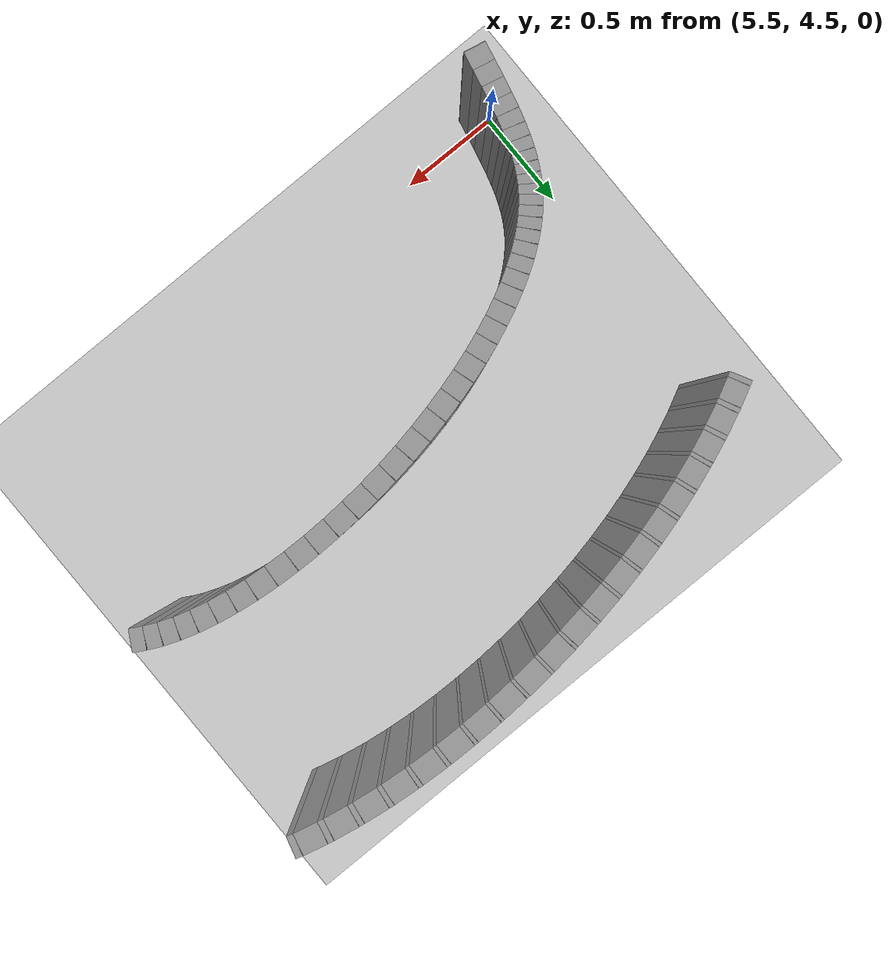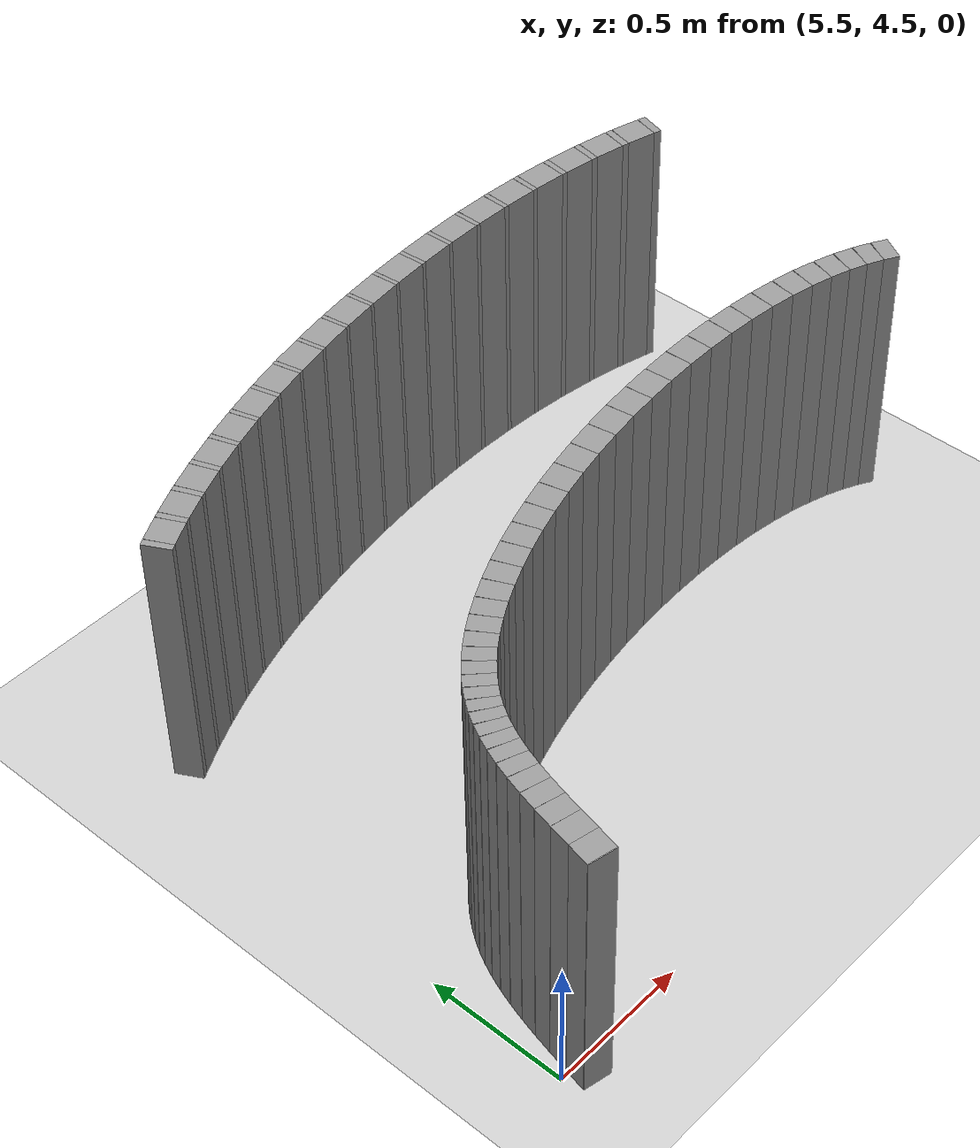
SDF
<sdf version="1.6">
 <world name="default">
  <include><uri>model://ground_plane</uri></include>
  <include><uri>model://sun</uri></include>
  <model name="wall_212_outward">
   <static>true</static>
   <link name="link">
    <collision name="collision">
     <geometry><box><size>0.05995046312315907 0.1 1.0</size></box></geometry>
    </collision>
    <visual name="visual">
     <geometry><box><size>0.05995046312315907 0.1 1.0</size></box></geometry>
     <material>
      <script><uri>file://media/materials/scripts/gazebo.material</uri><name>Gazebo/Gray</name></script>
     </material>
    </visual>
   </link>
   <pose>8.1506237798967 5.406469360327763 0.5 0 0 2.625404325792765</pose>
  </model>
  <model name="wall_213_outward">
   <static>true</static>
   <link name="link">
    <collision name="collision">
     <geometry><box><size>0.06509933092890204 0.1 1.0</size></box></geometry>
    </collision>
    <visual name="visual">
     <geometry><box><size>0.06509933092890204 0.1 1.0</size></box></geometry>
     <material>
      <script><uri>file://media/materials/scripts/gazebo.material</uri><name>Gazebo/Gray</name></script>
     </material>
    </visual>
   </link>
   <pose>8.095083386614988 5.435082907767775 0.5 0 0 2.70313628802765</pose>
  </model>
  <model name="wall_214_outward">
   <static>true</static>
   <link name="link">
    <collision name="collision">
     <geometry><box><size>0.07090601450926234 0.1 1.0</size></box></geometry>
    </collision>
    <visual name="visual">
     <geometry><box><size>0.07090601450926234 0.1 1.0</size></box></geometry>
     <material>
      <script><uri>file://media/materials/scripts/gazebo.material</uri><name>Gazebo/Gray</name></script>
     </material>
    </visual>
   </link>
   <pose>8.032509874602791 5.461594985831955 0.5 0 0 2.775431662112693</pose>
  </model>
  <model name="wall_215_outward">
   <static>true</static>
   <link name="link">
    <collision name="collision">
     <geometry><box><size>0.07699504733626207 0.1 1.0</size></box></geometry>
    </collision>
    <visual name="visual">
     <geometry><box><size>0.07699504733626207 0.1 1.0</size></box></geometry>
     <material>
      <script><uri>file://media/materials/scripts/gazebo.material</uri><name>Gazebo/Gray</name></script>
     </material>
    </visual>
   </link>
   <pose>7.962626741277601 5.485657832459349 0.5 0 0 2.841791571436246</pose>
  </model>
  <model name="wall_216_outward">
   <static>true</static>
   <link name="link">
    <collision name="collision">
     <geometry><box><size>0.08301848457207754 0.1 1.0</size></box></geometry>
    </collision>
    <visual name="visual">
     <geometry><box><size>0.08301848457207754 0.1 1.0</size></box></geometry>
     <material>
      <script><uri>file://media/materials/scripts/gazebo.material</uri><name>Gazebo/Gray</name></script>
     </material>
    </visual>
   </link>
   <pose>7.885521438888849 5.506871880847077 0.5 0 0 2.902145391687688</pose>
  </model>
  <model name="wall_217_outward">
   <static>true</static>
   <link name="link">
    <collision name="collision">
     <geometry><box><size>0.08868573841281405 0.1 1.0</size></box></geometry>
    </collision>
    <visual name="visual">
     <geometry><box><size>0.08868573841281405 0.1 1.0</size></box></geometry>
     <material>
      <script><uri>file://media/materials/scripts/gazebo.material</uri><name>Gazebo/Gray</name></script>
     </material>
    </visual>
   </link>
   <pose>7.8016088474082945 5.524865537663162 0.5 0 0 2.956767672621904</pose>
  </model>
  <model name="wall_218_outward">
   <static>true</static>
   <link name="link">
    <collision name="collision">
     <geometry><box><size>0.09377079176446705 0.1 1.0</size></box></geometry>
    </collision>
    <visual name="visual">
     <geometry><box><size>0.09377079176446705 0.1 1.0</size></box></geometry>
     <material>
      <script><uri>file://media/materials/scripts/gazebo.material</uri><name>Gazebo/Gray</name></script>
     </material>
    </visual>
   </link>
   <pose>7.711565120805339 5.539344903621009 0.5 0 0 3.006163068854115</pose>
  </model>
  <model name="wall_219_outward">
   <static>true</static>
   <link name="link">
    <collision name="collision">
     <geometry><box><size>0.0981175118577259 0.1 1.0</size></box></geometry>
    </collision>
    <visual name="visual">
     <geometry><box><size>0.0981175118577259 0.1 1.0</size></box></geometry>
     <material>
      <script><uri>file://media/materials/scripts/gazebo.material</uri><name>Gazebo/Gray</name></script>
     </material>
    </visual>
   </link>
   <pose>7.616251529898774 5.550114297664309 0.5 0 0 3.050983003352547</pose>
  </model>
  <model name="wall_220_outward">
   <static>true</static>
   <link name="link">
    <collision name="collision">
     <geometry><box><size>0.10162600915687924 0.1 1.0</size></box></geometry>
    </collision>
    <visual name="visual">
     <geometry><box><size>0.10162600915687924 0.1 1.0</size></box></geometry>
     <material>
      <script><uri>file://media/materials/scripts/gazebo.material</uri><name>Gazebo/Gray</name></script>
     </material>
    </visual>
   </link>
   <pose>7.516643686479449 5.55707622343524 0.5 0 0 3.091923345869126</pose>
  </model>
  <model name="wall_221_outward">
   <static>true</static>
   <link name="link">
    <collision name="collision">
     <geometry><box><size>0.10425214143422878 0.1 1.0</size></box></geometry>
    </collision>
    <visual name="visual">
     <geometry><box><size>0.10425214143422878 0.1 1.0</size></box></geometry>
     <material>
      <script><uri>file://media/materials/scripts/gazebo.material</uri><name>Gazebo/Gray</name></script>
     </material>
    </visual>
   </link>
   <pose>7.413770955394101 5.560218266210343 0.5 0 0 3.1297128364050724</pose>
  </model>
  <model name="wall_222_outward">
   <static>true</static>
   <link name="link">
    <collision name="collision">
     <geometry><box><size>0.10599500957717113 0.1 1.0</size></box></geometry>
    </collision>
    <visual name="visual">
     <geometry><box><size>0.10599500957717113 0.1 1.0</size></box></geometry>
     <material>
      <script><uri>file://media/materials/scripts/gazebo.material</uri><name>Gazebo/Gray</name></script>
     </material>
    </visual>
   </link>
   <pose>7.308665594637407 5.559596296106831 0.5 0 0 -3.1181704712085003</pose>
  </model>
  <model name="wall_223_outward">
   <static>true</static>
   <link name="link">
    <collision name="collision">
     <geometry><box><size>0.10688000333019294 0.1 1.0</size></box></geometry>
    </collision>
    <visual name="visual">
     <geometry><box><size>0.10688000333019294 0.1 1.0</size></box></geometry>
     <material>
      <script><uri>file://media/materials/scripts/gazebo.material</uri><name>Gazebo/Gray</name></script>
     </material>
    </visual>
   </link>
   <pose>7.202329036396534 5.555317294556017 0.5 0 0 -3.0847169772143976</pose>
  </model>
  <model name="wall_224_outward">
   <static>true</static>
   <link name="link">
    <collision name="collision">
     <geometry><box><size>0.10696598660294745 0.1 1.0</size></box></geometry>
    </collision>
    <visual name="visual">
     <geometry><box><size>0.10696598660294745 0.1 1.0</size></box></geometry>
     <material>
      <script><uri>file://media/materials/scripts/gazebo.material</uri><name>Gazebo/Gray</name></script>
     </material>
    </visual>
   </link>
   <pose>7.0957043651149725 5.54752318849598 0.5 0 0 -3.0525437843858363</pose>
  </model>
  <model name="wall_225_outward">
   <static>true</static>
   <link name="link">
    <collision name="collision">
     <geometry><box><size>0.1063183626840919 0.1 1.0</size></box></geometry>
    </collision>
    <visual name="visual">
     <geometry><box><size>0.1063183626840919 0.1 1.0</size></box></geometry>
     <material>
      <script><uri>file://media/materials/scripts/gazebo.material</uri><name>Gazebo/Gray</name></script>
     </material>
    </visual>
   </link>
   <pose>6.989659174433154 5.536380023327034 0.5 0 0 -3.021155822221346</pose>
  </model>
  <model name="wall_226_outward">
   <static>true</static>
   <link name="link">
    <collision name="collision">
     <geometry><box><size>0.10501615840802588 0.1 1.0</size></box></geometry>
    </collision>
    <visual name="visual">
     <geometry><box><size>0.10501615840802588 0.1 1.0</size></box></geometry>
     <material>
      <script><uri>file://media/materials/scripts/gazebo.material</uri><name>Gazebo/Gray</name></script>
     </material>
    </visual>
   </link>
   <pose>6.884978440751743 5.5220684749826585 0.5 0 0 -2.9900904714254004</pose>
  </model>
  <model name="wall_227_outward">
   <static>true</static>
   <link name="link">
    <collision name="collision">
     <geometry><box><size>0.10313655621044901 0.1 1.0</size></box></geometry>
    </collision>
    <visual name="visual">
     <geometry><box><size>0.10313655621044901 0.1 1.0</size></box></geometry>
     <material>
      <script><uri>file://media/materials/scripts/gazebo.material</uri><name>Gazebo/Gray</name></script>
     </material>
    </visual>
   </link>
   <pose>6.782361101849957 5.504778382736661 0.5 0 0 -2.958967530170526</pose>
  </model>
  <model name="wall_228_outward">
   <static>true</static>
   <link name="link">
    <collision name="collision">
     <geometry><box><size>0.10075711178670715 0.1 1.0</size></box></geometry>
    </collision>
    <visual name="visual">
     <geometry><box><size>0.10075711178670715 0.1 1.0</size></box></geometry>
     <material>
      <script><uri>file://media/materials/scripts/gazebo.material</uri><name>Gazebo/Gray</name></script>
     </material>
    </visual>
   </link>
   <pose>6.682422951948803 5.4847051106708085 0.5 0 0 -2.92741064654284</pose>
  </model>
  <model name="wall_229_outward">
   <static>true</static>
   <link name="link">
    <collision name="collision">
     <geometry><box><size>0.09794020908362813 0.1 1.0</size></box></geometry>
    </collision>
    <visual name="visual">
     <geometry><box><size>0.09794020908362813 0.1 1.0</size></box></geometry>
     <material>
      <script><uri>file://media/materials/scripts/gazebo.material</uri><name>Gazebo/Gray</name></script>
     </material>
    </visual>
   </link>
   <pose>6.585705332641698 5.462049287182218 0.5 0 0 -2.895120123076851</pose>
  </model>
  <model name="wall_230_outward">
   <static>true</static>
   <link name="link">
    <collision name="collision"><geometry><box><size>0.094729739419281 0.1 1.0</size></box></geometry></collision>
    <visual name="visual">
     <geometry><box><size>0.094729739419281 0.1 1.0</size></box></geometry>
     <material>
      <script><uri>file://media/materials/scripts/gazebo.material</uri><name>Gazebo/Gray</name></script>
     </material>
    </visual>
   </link>
   <pose>6.492692766437545 5.437019148546813 0.5 0 0 -2.8617543999374733</pose>
  </model>
  <model name="wall_231_outward">
   <static>true</static>
   <link name="link">
    <collision name="collision">
     <geometry><box><size>0.09116728067584746 0.1 1.0</size></box></geometry>
    </collision>
    <visual name="visual">
     <geometry><box><size>0.09116728067584746 0.1 1.0</size></box></geometry>
     <material>
      <script><uri>file://media/materials/scripts/gazebo.material</uri><name>Gazebo/Gray</name></script>
     </material>
    </visual>
   </link>
   <pose>6.403824024808419 5.409831594691321 0.5 0 0 -2.8269893704129645</pose>
  </model>
  <model name="wall_232_outward">
   <static>true</static>
   <link name="link">
    <collision name="collision">
     <geometry><box><size>0.08727541460235813 0.1 1.0</size></box></geometry>
    </collision>
    <visual name="visual">
     <geometry><box><size>0.08727541460235813 0.1 1.0</size></box></geometry>
     <material>
      <script><uri>file://media/materials/scripts/gazebo.material</uri><name>Gazebo/Gray</name></script>
     </material>
    </visual>
   </link>
   <pose>6.319502337682961 5.380717162694282 0.5 0 0 -2.7904753713255004</pose>
  </model>
  <model name="wall_233_outward">
   <static>true</static>
   <link name="link">
    <collision name="collision">
     <geometry><box><size>0.08307569083572564 0.1 1.0</size></box></geometry>
    </collision>
    <visual name="visual">
     <geometry><box><size>0.08307569083572564 0.1 1.0</size></box></geometry>
     <material>
      <script><uri>file://media/materials/scripts/gazebo.material</uri><name>Gazebo/Gray</name></script>
     </material>
    </visual>
   </link>
   <pose>6.240104617225761 5.349924805192407 0.5 0 0 -2.7518246813445324</pose>
  </model>
  <model name="wall_234_outward">
   <static>true</static>
   <link name="link">
    <collision name="collision">
     <geometry><box><size>0.07858195476373597 0.1 1.0</size></box></geometry>
    </collision>
    <visual name="visual">
     <geometry><box><size>0.07858195476373597 0.1 1.0</size></box></geometry>
     <material>
      <script><uri>file://media/materials/scripts/gazebo.material</uri><name>Gazebo/Gray</name></script>
     </material>
    </visual>
   </link>
   <pose>6.165983883697352 5.317727817645947 0.5 0 0 -2.7106283042936674</pose>
  </model>
  <model name="wall_235_outward">
   <static>true</static>
   <link name="link">
    <collision name="collision">
     <geometry><box><size>0.07382531686332017 0.1 1.0</size></box></geometry>
    </collision>
    <visual name="visual">
     <geometry><box><size>0.07382531686332017 0.1 1.0</size></box></geometry>
     <material>
      <script><uri>file://media/materials/scripts/gazebo.material</uri><name>Gazebo/Gray</name></script>
     </material>
    </visual>
   </link>
   <pose>6.097462404003185 5.284426674954325 0.5 0 0 -2.6664138173351883</pose>
  </model>
  <model name="wall_236_outward">
   <static>true</static>
   <link name="link">
    <collision name="collision">
     <geometry><box><size>0.06887111057482227 0.1 1.0</size></box></geometry>
    </collision>
    <visual name="visual">
     <geometry><box><size>0.06887111057482227 0.1 1.0</size></box></geometry>
     <material>
      <script><uri>file://media/materials/scripts/gazebo.material</uri><name>Gazebo/Gray</name></script>
     </material>
    </visual>
   </link>
   <pose>6.034804521221858 5.250343427154345 0.5 0 0 -2.618730691392386</pose>
  </model>
  <model name="wall_237_outward">
   <static>true</static>
   <link name="link">
    <collision name="collision">
     <geometry><box><size>0.06381877566655578 0.1 1.0</size></box></geometry>
    </collision>
    <visual name="visual">
     <geometry><box><size>0.06381877566655578 0.1 1.0</size></box></geometry>
     <material>
      <script><uri>file://media/materials/scripts/gazebo.material</uri><name>Gazebo/Gray</name></script>
     </material>
    </visual>
   </link>
   <pose>5.978181418325321 5.2158100136790235 0.5 0 0 -2.567183375779532</pose>
  </model>
  <model name="wall_238_outward">
   <static>true</static>
   <link name="link">
    <collision name="collision">
     <geometry><box><size>0.05882028474571985 0.1 1.0</size></box></geometry>
    </collision>
    <visual name="visual">
     <geometry><box><size>0.05882028474571985 0.1 1.0</size></box></geometry>
     <material>
      <script><uri>file://media/materials/scripts/gazebo.material</uri><name>Gazebo/Gray</name></script>
     </material>
    </visual>
   </link>
   <pose>5.927630631859757 5.181143132241562 0.5 0 0 -2.5114901246663437</pose>
  </model>
  <model name="wall_239_outward">
   <static>true</static>
   <link name="link">
    <collision name="collision">
     <geometry><box><size>0.05408720525059506 0.1 1.0</size></box></geometry>
    </collision>
    <visual name="visual">
     <geometry><box><size>0.05408720525059506 0.1 1.0</size></box></geometry>
     <material>
      <script><uri>file://media/materials/scripts/gazebo.material</uri><name>Gazebo/Gray</name></script>
     </material>
    </visual>
   </link>
   <pose>5.883010910804789 5.146599633696312 0.5 0 0 -2.4515939818297907</pose>
  </model>
  <model name="wall_240_outward">
   <static>true</static>
   <link name="link">
    <collision name="collision">
     <geometry><box><size>0.04987176911246013 0.1 1.0</size></box></geometry>
    </collision>
    <visual name="visual">
     <geometry><box><size>0.04987176911246013 0.1 1.0</size></box></geometry>
     <material>
      <script><uri>file://media/materials/scripts/gazebo.material</uri><name>Gazebo/Gray</name></script>
     </material>
    </visual>
   </link>
   <pose>5.843973627917768 5.112318290293825 0.5 0 0 -2.387757572910626</pose>
  </model>
  <model name="wall_241_outward">
   <static>true</static>
   <link name="link">
    <collision name="collision">
     <geometry><box><size>0.046473204746329926 0.1 1.0</size></box></geometry>
    </collision>
    <visual name="visual">
     <geometry><box><size>0.046473204746329926 0.1 1.0</size></box></geometry>
     <material>
      <script><uri>file://media/materials/scripts/gazebo.material</uri><name>Gazebo/Gray</name></script>
     </material>
    </visual>
   </link>
   <pose>5.809957631141192 5.078246456220851 0.5 0 0 -2.3206221658220016</pose>
  </model>
  <model name="wall_242_outward">
   <static>true</static>
   <link name="link">
    <collision name="collision">
     <geometry><box><size>0.044161696143782445 0.1 1.0</size></box></geometry>
    </collision>
    <visual name="visual">
     <geometry><box><size>0.044161696143782445 0.1 1.0</size></box></geometry>
     <material>
      <script><uri>file://media/materials/scripts/gazebo.material</uri><name>Gazebo/Gray</name></script>
     </material>
    </visual>
   </link>
   <pose>5.780227791998172 5.044079995390269 0.5 0 0 -2.2513525788003808</pose>
  </model>
  <model name="wall_243_outward">
   <static>true</static>
   <link name="link">
    <collision name="collision">
     <geometry><box><size>0.04312392012872396 0.1 1.0</size></box></geometry>
    </collision>
    <visual name="visual">
     <geometry><box><size>0.04312392012872396 0.1 1.0</size></box></geometry>
     <material>
      <script><uri>file://media/materials/scripts/gazebo.material</uri><name>Gazebo/Gray</name></script>
     </material>
    </visual>
   </link>
   <pose>5.753970544217557 5.009252921073463 0.5 0 0 -2.1814342052342663</pose>
  </model>
  <model name="wall_244_outward">
   <static>true</static>
   <link name="link">
    <collision name="collision">
     <geometry><box><size>0.04346492859870355 0.1 1.0</size></box></geometry>
    </collision>
    <visual name="visual">
     <geometry><box><size>0.04346492859870355 0.1 1.0</size></box></geometry>
     <material>
      <script><uri>file://media/materials/scripts/gazebo.material</uri><name>Gazebo/Gray</name></script>
     </material>
    </visual>
   </link>
   <pose>5.7303993481668485 4.972968088856651 0.5 0 0 -2.1126394915526587</pose>
  </model>
  <model name="wall_245_outward">
   <static>true</static>
   <link name="link">
    <collision name="collision">
     <geometry><box><size>0.045146735553079353 0.1 1.0</size></box></geometry>
    </collision>
    <visual name="visual">
     <geometry><box><size>0.045146735553079353 0.1 1.0</size></box></geometry>
     <material>
      <script><uri>file://media/materials/scripts/gazebo.material</uri><name>Gazebo/Gray</name></script>
     </material>
    </visual>
   </link>
   <pose>5.708846607974415 4.934285223857794 0.5 0 0 -2.0468572406583445</pose>
  </model>
  <model name="wall_246_outward">
   <static>true</static>
   <link name="link">
    <collision name="collision">
     <geometry><box><size>0.048004178926924074 0.1 1.0</size></box></geometry>
    </collision>
    <visual name="visual">
     <geometry><box><size>0.048004178926924074 0.1 1.0</size></box></geometry>
     <material>
      <script><uri>file://media/materials/scripts/gazebo.material</uri><name>Gazebo/Gray</name></script>
     </material>
    </visual>
   </link>
   <pose>5.68882391536165 4.89225729829358 0.5 0 0 -1.985811421218133</pose>
  </model>
  <model name="wall_247_outward">
   <static>true</static>
   <link name="link">
    <collision name="collision">
     <geometry><box><size>0.051810924929084276 0.1 1.0</size></box></geometry>
    </collision>
    <visual name="visual">
     <geometry><box><size>0.051810924929084276 0.1 1.0</size></box></geometry>
     <material>
      <script><uri>file://media/materials/scripts/gazebo.material</uri><name>Gazebo/Gray</name></script>
     </material>
    </visual>
   </link>
   <pose>5.670016447585288 4.846049372080335 0.5 0 0 -1.930957542307776</pose>
  </model>
  <model name="wall_248_outward">
   <static>true</static>
   <link name="link">
    <collision name="collision">
     <geometry><box><size>0.05630084568796702 0.1 1.0</size></box></geometry>
    </collision>
    <visual name="visual">
     <geometry><box><size>0.05630084568796702 0.1 1.0</size></box></geometry>
     <material>
      <script><uri>file://media/materials/scripts/gazebo.material</uri><name>Gazebo/Gray</name></script>
     </material>
    </visual>
   </link>
   <pose>5.652228771010693 4.795020067687675 0.5 0 0 -1.883423888779952</pose>
  </model>
  <model name="wall_249_outward">
   <static>true</static>
   <link name="link">
    <collision name="collision">
     <geometry><box><size>0.06122900756149922 0.1 1.0</size></box></geometry>
    </collision>
    <visual name="visual">
     <geometry><box><size>0.06122900756149922 0.1 1.0</size></box></geometry>
     <material>
      <script><uri>file://media/materials/scripts/gazebo.material</uri><name>Gazebo/Gray</name></script>
     </material>
    </visual>
   </link>
   <pose>5.635311859730585 4.7387546939804075 0.5 0 0 -1.8439537332949423</pose>
  </model>
  <model name="wall_250_outward">
   <static>true</static>
   <link name="link">
    <collision name="collision">
     <geometry><box><size>0.06640830715730045 0.1 1.0</size></box></geometry>
    </collision>
    <visual name="visual">
     <geometry><box><size>0.06640830715730045 0.1 1.0</size></box></geometry>
     <material>
      <script><uri>file://media/materials/scripts/gazebo.material</uri><name>Gazebo/Gray</name></script>
     </material>
    </visual>
   </link>
   <pose>5.619087327837915 4.677040715050532 0.5 0 0 -1.8130556098517185</pose>
  </model>
  <model name="wall_251_outward">
   <static>true</static>
   <link name="link">
    <collision name="collision">
     <geometry><box><size>0.07170387707385684 0.1 1.0</size></box></geometry>
    </collision>
    <visual name="visual">
     <geometry><box><size>0.07170387707385684 0.1 1.0</size></box></geometry>
     <material>
      <script><uri>file://media/materials/scripts/gazebo.material</uri><name>Gazebo/Gray</name></script>
     </material>
    </visual>
   </link>
   <pose>5.603289019240068 4.609820325743945 0.5 0 0 -1.791047616483303</pose>
  </model>
  <model name="wall_252_outward">
   <static>true</static>
   <link name="link">
    <collision name="collision">
     <geometry><box><size>0.07704072606978592 0.1 1.0</size></box></geometry>
    </collision>
    <visual name="visual">
     <geometry><box><size>0.07704072606978592 0.1 1.0</size></box></geometry>
     <material>
      <script><uri>file://media/materials/scripts/gazebo.material</uri><name>Gazebo/Gray</name></script>
     </material>
    </visual>
   </link>
   <pose>5.587525497561829 4.537139369396245 0.5 0 0 -1.7781645851803065</pose>
  </model>
  <model name="wall_253_outward">
   <static>true</static>
   <link name="link">
    <collision name="collision">
     <geometry><box><size>0.08088910439930437 0.1 1.0</size></box></geometry>
    </collision>
    <visual name="visual">
     <geometry><box><size>0.08088910439930437 0.1 1.0</size></box></geometry>
     <material>
      <script><uri>file://media/materials/scripts/gazebo.material</uri><name>Gazebo/Gray</name></script>
     </material>
    </visual>
   </link>
   <pose>5.571408373581726 4.459836869376188 0.5 0 0 -1.7746137395964356</pose>
  </model>
  <model name="wall_254_outward">
   <static>true</static>
   <link name="link">
    <collision name="collision">
     <geometry><box><size>0.0030009866027214754 0.1 1.0</size></box></geometry>
    </collision>
    <visual name="visual">
     <geometry><box><size>0.0030009866027214754 0.1 1.0</size></box></geometry>
     <material>
      <script><uri>file://media/materials/scripts/gazebo.material</uri><name>Gazebo/Gray</name></script>
     </material>
    </visual>
   </link>
   <pose>5.562913902392068 4.418760960929161 0.5 0 0 -1.7776147307034371</pose>
  </model>
  <model name="wall_403_inward">
   <static>true</static>
   <link name="link">
    <collision name="collision">
     <geometry><box><size>0.03017233025431711 0.1 1.0</size></box></geometry>
    </collision>
    <visual name="visual">
     <geometry><box><size>0.03017233025431711 0.1 1.0</size></box></geometry>
     <material>
      <script><uri>file://media/materials/scripts/gazebo.material</uri><name>Gazebo/Gray</name></script>
     </material>
    </visual>
   </link>
   <pose>8.19221562327466 6.460898485944908 0.5 0 0 2.8719684815619577</pose>
  </model>
  <model name="wall_404_inward">
   <static>true</static>
   <link name="link">
    <collision name="collision">
     <geometry><box><size>0.1117704878533052 0.1 1.0</size></box></geometry>
    </collision>
    <visual name="visual">
     <geometry><box><size>0.1117704878533052 0.1 1.0</size></box></geometry>
     <material>
      <script><uri>file://media/materials/scripts/gazebo.material</uri><name>Gazebo/Gray</name></script>
     </material>
    </visual>
   </link>
   <pose>8.123383711121242 6.478171038464275 0.5 0 0 2.902145391687687</pose>
  </model>
  <model name="wall_405_inward">
   <static>true</static>
   <link name="link">
    <collision name="collision">
     <geometry><box><size>0.027307745371096825 0.1 1.0</size></box></geometry>
    </collision>
    <visual name="visual">
     <geometry><box><size>0.027307745371096825 0.1 1.0</size></box></geometry>
     <material>
      <script><uri>file://media/materials/scripts/gazebo.material</uri><name>Gazebo/Gray</name></script>
     </material>
    </visual>
   </link>
   <pose>8.05574511802343 6.494299905149729 0.5 0 0 2.9294565321547927</pose>
  </model>
  <model name="wall_406_inward">
   <static>true</static>
   <link name="link">
    <collision name="collision">
     <geometry><box><size>0.11469606538818705 0.1 1.0</size></box></geometry>
    </collision>
    <visual name="visual">
     <geometry><box><size>0.11469606538818705 0.1 1.0</size></box></geometry>
     <material>
      <script><uri>file://media/materials/scripts/gazebo.material</uri><name>Gazebo/Gray</name></script>
     </material>
    </visual>
   </link>
   <pose>7.986026013259083 6.507713815068124 0.5 0 0 2.9567676726219045</pose>
  </model>
  <model name="wall_407_inward">
   <static>true</static>
   <link name="link">
    <collision name="collision">
     <geometry><box><size>0.02469518735762941 0.1 1.0</size></box></geometry>
    </collision>
    <visual name="visual">
     <geometry><box><size>0.02469518735762941 0.1 1.0</size></box></geometry>
     <material>
      <script><uri>file://media/materials/scripts/gazebo.material</uri><name>Gazebo/Gray</name></script>
     </material>
    </visual>
   </link>
   <pose>7.917465076739607 6.520221669024801 0.5 0 0 2.98146537073801</pose>
  </model>
  <model name="wall_408_inward">
   <static>true</static>
   <link name="link">
    <collision name="collision">
     <geometry><box><size>0.11732901201087136 0.1 1.0</size></box></geometry>
    </collision>
    <visual name="visual">
     <geometry><box><size>0.11732901201087136 0.1 1.0</size></box></geometry>
     <material>
      <script><uri>file://media/materials/scripts/gazebo.material</uri><name>Gazebo/Gray</name></script>
     </material>
    </visual>
   </link>
   <pose>7.847148105994504 6.530111062509015 0.5 0 0 3.006163068854117</pose>
  </model>
  <model name="wall_409_inward">
   <static>true</static>
   <link name="link">
    <collision name="collision">
     <geometry><box><size>0.022408091557282593 0.1 1.0</size></box></geometry>
    </collision>
    <visual name="visual">
     <geometry><box><size>0.022408091557282593 0.1 1.0</size></box></geometry>
     <material>
      <script><uri>file://media/materials/scripts/gazebo.material</uri><name>Gazebo/Gray</name></script>
     </material>
    </visual>
   </link>
   <pose>7.777888201277989 6.539295290870596 0.5 0 0 3.02857303610331</pose>
  </model>
  <model name="wall_410_inward">
   <static>true</static>
   <link name="link">
    <collision name="collision">
     <geometry><box><size>0.11956088706254388 0.1 1.0</size></box></geometry>
    </collision>
    <visual name="visual">
     <geometry><box><size>0.11956088706254388 0.1 1.0</size></box></geometry>
     <material>
      <script><uri>file://media/materials/scripts/gazebo.material</uri><name>Gazebo/Gray</name></script>
     </material>
    </visual>
   </link>
   <pose>7.70722042701878 6.545968149968338 0.5 0 0 3.050983003352543</pose>
  </model>
  <model name="wall_411_inward">
   <static>true</static>
   <link name="link">
    <collision name="collision">
     <geometry><box><size>0.020468741692727322 0.1 1.0</size></box></geometry>
    </collision>
    <visual name="visual">
     <geometry><box><size>0.020468741692727322 0.1 1.0</size></box></geometry>
     <material>
      <script><uri>file://media/materials/scripts/gazebo.material</uri><name>Gazebo/Gray</name></script>
     </material>
    </visual>
   </link>
   <pose>7.637476010672165 6.552094671175313 0.5 0 0 3.0714531746108538</pose>
  </model>
  <model name="wall_412_inward">
   <static>true</static>
   <link name="link">
    <collision name="collision">
     <geometry><box><size>0.12131102168901048 0.1 1.0</size></box></geometry>
    </collision>
    <visual name="visual">
     <geometry><box><size>0.12131102168901048 0.1 1.0</size></box></geometry>
     <material>
      <script><uri>file://media/materials/scripts/gazebo.material</uri><name>Gazebo/Gray</name></script>
     </material>
    </visual>
   </link>
   <pose>7.566686097303178 6.555823394826579 0.5 0 0 3.0919233458691284</pose>
  </model>
  <model name="wall_413_inward">
   <static>true</static>
   <link name="link">
    <collision name="collision">
     <geometry><box><size>0.018893621014800785 0.1 1.0</size></box></geometry>
    </collision>
    <visual name="visual">
     <geometry><box><size>0.018893621014800785 0.1 1.0</size></box></geometry>
     <material>
      <script><uri>file://media/materials/scripts/gazebo.material</uri><name>Gazebo/Gray</name></script>
     </material>
    </visual>
   </link>
   <pose>7.496663053420067 6.559125549036413 0.5 0 0 3.1108180911370997</pose>
  </model>
  <model name="wall_414_inward">
   <static>true</static>
   <link name="link">
    <collision name="collision">
     <geometry><box><size>0.12252705505885529 0.1 1.0</size></box></geometry>
    </collision>
    <visual name="visual">
     <geometry><box><size>0.12252705505885529 0.1 1.0</size></box></geometry>
     <material>
      <script><uri>file://media/materials/scripts/gazebo.material</uri><name>Gazebo/Gray</name></script>
     </material>
    </visual>
   </link>
   <pose>7.425961511454762 6.560144006997614 0.5 0 0 3.1297128364050724</pose>
  </model>
  <model name="wall_415_inward">
   <static>true</static>
   <link name="link">
    <collision name="collision">
     <geometry><box><size>0.017650083246194423 0.1 1.0</size></box></geometry>
    </collision>
    <visual name="visual">
     <geometry><box><size>0.017650083246194423 0.1 1.0</size></box></geometry>
     <material>
      <script><uri>file://media/materials/scripts/gazebo.material</uri><name>Gazebo/Gray</name></script>
     </material>
    </visual>
   </link>
   <pose>7.355877412279371 6.560820858741889 0.5 0 0 -3.1358214709914973</pose>
  </model>
  <model name="wall_416_inward">
   <static>true</static>
   <link name="link">
    <collision name="collision">
     <geometry><box><size>0.12318557969939126 0.1 1.0</size></box></geometry>
    </collision>
    <visual name="visual">
     <geometry><box><size>0.12318557969939126 0.1 1.0</size></box></geometry>
     <material>
      <script><uri>file://media/materials/scripts/gazebo.material</uri><name>Gazebo/Gray</name></script>
     </material>
    </visual>
   </link>
   <pose>7.285476621859637 6.559327422441946 0.5 0 0 -3.1181704712085003</pose>
  </model>
  <model name="wall_417_inward">
   <static>true</static>
   <link name="link">
    <collision name="collision">
     <geometry><box><size>0.016725967028415147 0.1 1.0</size></box></geometry>
    </collision>
    <visual name="visual">
     <geometry><box><size>0.016725967028415147 0.1 1.0</size></box></geometry>
     <material>
      <script><uri>file://media/materials/scripts/gazebo.material</uri><name>Gazebo/Gray</name></script>
     </material>
    </visual>
   </link>
   <pose>7.215544481977313 6.55754924214942 0.5 0 0 -3.101443724211479</pose>
  </model>
  <model name="wall_418_inward">
   <static>true</static>
   <link name="link">
    <collision name="collision">
     <geometry><box><size>0.1232881489856139 0.1 1.0</size></box></geometry>
    </collision>
    <visual name="visual">
     <geometry><box><size>0.1232881489856139 0.1 1.0</size></box></geometry>
     <material>
      <script><uri>file://media/materials/scripts/gazebo.material</uri><name>Gazebo/Gray</name></script>
     </material>
    </visual>
   </link>
   <pose>7.145643840927768 6.553709409028339 0.5 0 0 -3.0847169772144016</pose>
  </model>
  <model name="wall_419_inward">
   <static>true</static>
   <link name="link">
    <collision name="collision">
     <geometry><box><size>0.016085902612152737 0.1 1.0</size></box></geometry>
    </collision>
    <visual name="visual">
     <geometry><box><size>0.016085902612152737 0.1 1.0</size></box></geometry>
     <material>
      <script><uri>file://media/materials/scripts/gazebo.material</uri><name>Gazebo/Gray</name></script>
     </material>
    </visual>
   </link>
   <pose>7.076077891495341 6.549618939064004 0.5 0 0 -3.0686303808001014</pose>
  </model>
  <model name="wall_420_inward">
   <static>true</static>
   <link name="link">
    <collision name="collision">
     <geometry><box><size>0.1228576135382913 0.1 1.0</size></box></geometry>
    </collision>
    <visual name="visual">
     <geometry><box><size>0.1228576135382913 0.1 1.0</size></box></geometry>
     <material>
      <script><uri>file://media/materials/scripts/gazebo.material</uri><name>Gazebo/Gray</name></script>
     </material>
    </visual>
   </link>
   <pose>7.0068709273602146 6.543569688402342 0.5 0 0 -3.052543784385836</pose>
  </model>
  <model name="wall_421_inward">
   <static>true</static>
   <link name="link">
    <collision name="collision">
     <geometry><box><size>0.015693336849532155 0.1 1.0</size></box></geometry>
    </collision>
    <visual name="visual">
     <geometry><box><size>0.015693336849532155 0.1 1.0</size></box></geometry>
     <material>
      <script><uri>file://media/materials/scripts/gazebo.material</uri><name>Gazebo/Gray</name></script>
     </material>
    </visual>
   </link>
   <pose>6.937881851118842 6.537286368801077 0.5 0 0 -3.036849803303608</pose>
  </model>
  <model name="wall_422_inward">
   <static>true</static>
   <link name="link">
    <collision name="collision">
     <geometry><box><size>0.1219329598678278 0.1 1.0</size></box></geometry>
    </collision>
    <visual name="visual">
     <geometry><box><size>0.1219329598678278 0.1 1.0</size></box></geometry>
     <material>
      <script><uri>file://media/materials/scripts/gazebo.material</uri><name>Gazebo/Gray</name></script>
     </material>
    </visual>
   </link>
   <pose>6.869553332692374 6.529141116645438 0.5 0 0 -3.02115582222134</pose>
  </model>
  <model name="wall_423_inward">
   <static>true</static>
   <link name="link">
    <collision name="collision">
     <geometry><box><size>0.015532050826258552 0.1 1.0</size></box></geometry>
    </collision>
    <visual name="visual">
     <geometry><box><size>0.015532050826258552 0.1 1.0</size></box></geometry>
     <material>
      <script><uri>file://media/materials/scripts/gazebo.material</uri><name>Gazebo/Gray</name></script>
     </material>
    </visual>
   </link>
   <pose>6.801334130930975 6.520763552917558 0.5 0 0 -3.005623146823337</pose>
  </model>
  <model name="wall_424_inward">
   <static>true</static>
   <link name="link">
    <collision name="collision">
     <geometry><box><size>0.12056448418044112 0.1 1.0</size></box></geometry>
    </collision>
    <visual name="visual">
     <geometry><box><size>0.12056448418044112 0.1 1.0</size></box></geometry>
     <material>
      <script><uri>file://media/materials/scripts/gazebo.material</uri><name>Gazebo/Gray</name></script>
     </material>
    </visual>
   </link>
   <pose>6.734048045097331 6.51061286736949 0.5 0 0 -2.9900904714253995</pose>
  </model>
  <model name="wall_425_inward">
   <static>true</static>
   <link name="link">
    <collision name="collision">
     <geometry><box><size>0.015560842575725013 0.1 1.0</size></box></geometry>
    </collision>
    <visual name="visual">
     <geometry><box><size>0.015560842575725013 0.1 1.0</size></box></geometry>
     <material>
      <script><uri>file://media/materials/scripts/gazebo.material</uri><name>Gazebo/Gray</name></script>
     </material>
    </visual>
   </link>
   <pose>6.666784210427435 6.500221086192804 0.5 0 0 -2.974529000797985</pose>
  </model>
  <model name="wall_426_inward">
   <static>true</static>
   <link name="link">
    <collision name="collision">
     <geometry><box><size>0.11880779531455782 0.1 1.0</size></box></geometry>
    </collision>
    <visual name="visual">
     <geometry><box><size>0.11880779531455782 0.1 1.0</size></box></geometry>
     <material>
      <script><uri>file://media/materials/scripts/gazebo.material</uri><name>Gazebo/Gray</name></script>
     </material>
    </visual>
   </link>
   <pose>6.600696083285359 6.4881388578289085 0.5 0 0 -2.958967530170528</pose>
  </model>
  <model name="wall_427_inward">
   <static>true</static>
   <link name="link">
    <collision name="collision">
     <geometry><box><size>0.01577778712388332 0.1 1.0</size></box></geometry>
    </collision>
    <visual name="visual">
     <geometry><box><size>0.01577778712388332 0.1 1.0</size></box></geometry>
     <material>
      <script><uri>file://media/materials/scripts/gazebo.material</uri><name>Gazebo/Gray</name></script>
     </material>
    </visual>
   </link>
   <pose>6.534545919798946 6.475795480932883 0.5 0 0 -2.943189088356699</pose>
  </model>
  <model name="wall_428_inward">
   <static>true</static>
   <link name="link">
    <collision name="collision">
     <geometry><box><size>0.11672031982605895 0.1 1.0</size></box></geometry>
    </collision>
    <visual name="visual">
     <geometry><box><size>0.11672031982605895 0.1 1.0</size></box></geometry>
     <material>
      <script><uri>file://media/materials/scripts/gazebo.material</uri><name>Gazebo/Gray</name></script>
     </material>
    </visual>
   </link>
   <pose>6.469785122331128 6.461836198002276 0.5 0 0 -2.9274106465428393</pose>
  </model>
  <model name="wall_429_inward">
   <static>true</static>
   <link name="link">
    <collision name="collision">
     <geometry><box><size>0.016144560312646616 0.1 1.0</size></box></geometry>
    </collision>
    <visual name="visual">
     <geometry><box><size>0.016144560312646616 0.1 1.0</size></box></geometry>
     <material>
      <script><uri>file://media/materials/scripts/gazebo.material</uri><name>Gazebo/Gray</name></script>
     </material>
    </visual>
   </link>
   <pose>6.4048993527620555 6.447588980646279 0.5 0 0 -2.911265384809838</pose>
  </model>
  <model name="wall_430_inward">
   <static>true</static>
   <link name="link">
    <collision name="collision">
     <geometry><box><size>0.11435574618018081 0.1 1.0</size></box></geometry>
    </collision>
    <visual name="visual">
     <geometry><box><size>0.11435574618018081 0.1 1.0</size></box></geometry>
     <material>
      <script><uri>file://media/materials/scripts/gazebo.material</uri><name>Gazebo/Gray</name></script>
     </material>
    </visual>
   </link>
   <pose>6.341590341132568 6.431795588538188 0.5 0 0 -2.8951201230768553</pose>
  </model>
  <model name="wall_431_inward">
   <static>true</static>
   <link name="link">
    <collision name="collision">
     <geometry><box><size>0.016682087724045558 0.1 1.0</size></box></geometry>
    </collision>
    <visual name="visual">
     <geometry><box><size>0.016682087724045558 0.1 1.0</size></box></geometry>
     <material>
      <script><uri>file://media/materials/scripts/gazebo.material</uri><name>Gazebo/Gray</name></script>
     </material>
    </visual>
   </link>
   <pose>6.278086539821576 6.415675322892863 0.5 0 0 -2.8784372615071554</pose>
  </model>
  <model name="wall_432_inward">
   <static>true</static>
   <link name="link">
    <collision name="collision">
     <geometry><box><size>0.11176407699338406 0.1 1.0</size></box></geometry>
    </collision>
    <visual name="visual">
     <geometry><box><size>0.11176407699338406 0.1 1.0</size></box></geometry>
     <material>
      <script><uri>file://media/materials/scripts/gazebo.material</uri><name>Gazebo/Gray</name></script>
     </material>
    </visual>
   </link>
   <pose>6.2163244107151865 6.39807094869483 0.5 0 0 -2.8617543999374693</pose>
  </model>
  <model name="wall_433_inward">
   <static>true</static>
   <link name="link">
    <collision name="collision">
     <geometry><box><size>0.01738163941573392 0.1 1.0</size></box></geometry>
    </collision>
    <visual name="visual">
     <geometry><box><size>0.01738163941573392 0.1 1.0</size></box></geometry>
     <material>
      <script><uri>file://media/materials/scripts/gazebo.material</uri><name>Gazebo/Gray</name></script>
     </material>
    </visual>
   </link>
   <pose>6.154306413467532 6.380091090672025 0.5 0 0 -2.8443718851752084</pose>
  </model>
  <model name="wall_434_inward">
   <static>true</static>
   <link name="link">
    <collision name="collision">
     <geometry><box><size>0.10898892766083502 0.1 1.0</size></box></geometry>
    </collision>
    <visual name="visual">
     <geometry><box><size>0.10898892766083502 0.1 1.0</size></box></geometry>
     <material>
      <script><uri>file://media/materials/scripts/gazebo.material</uri><name>Gazebo/Gray</name></script>
     </material>
    </visual>
   </link>
   <pose>6.094176817733047 6.360683136718792 0.5 0 0 -2.8269893704129636</pose>
  </model>
  <model name="wall_435_inward">
   <static>true</static>
   <link name="link">
    <collision name="collision">
     <geometry><box><size>0.018255985329440408 0.1 1.0</size></box></geometry>
    </collision>
    <visual name="visual">
     <geometry><box><size>0.018255985329440408 0.1 1.0</size></box></geometry>
     <material>
      <script><uri>file://media/materials/scripts/gazebo.material</uri><name>Gazebo/Gray</name></script>
     </material>
    </visual>
   </link>
   <pose>6.033730013110682 6.340837860573514 0.5 0 0 -2.8087323708692358</pose>
  </model>
  <model name="wall_436_inward">
   <static>true</static>
   <link name="link">
    <collision name="collision">
     <geometry><box><size>0.10606880431838568 0.1 1.0</size></box></geometry>
    </collision>
    <visual name="visual">
     <geometry><box><size>0.10606880431838568 0.1 1.0</size></box></geometry>
     <material>
      <script><uri>file://media/materials/scripts/gazebo.material</uri><name>Gazebo/Gray</name></script>
     </material>
    </visual>
   </link>
   <pose>5.975304320236972 6.319614279620193 0.5 0 0 -2.790475371325498</pose>
  </model>
  <model name="wall_437_inward">
   <static>true</static>
   <link name="link">
    <collision name="collision">
     <geometry><box><size>0.019324142110203498 0.1 1.0</size></box></geometry>
    </collision>
    <visual name="visual">
     <geometry><box><size>0.019324142110203498 0.1 1.0</size></box></geometry>
     <material>
      <script><uri>file://media/materials/scripts/gazebo.material</uri><name>Gazebo/Gray</name></script>
     </material>
    </visual>
   </link>
   <pose>5.916498933641869 6.297875307862178 0.5 0 0 -2.7711500263350417</pose>
  </model>
  <model name="wall_438_inward">
   <static>true</static>
   <link name="link">
    <collision name="collision">
     <geometry><box><size>0.10304011750839231 0.1 1.0</size></box></geometry>
    </collision>
    <visual name="visual">
     <geometry><box><size>0.10304011750839231 0.1 1.0</size></box></geometry>
     <material>
      <script><uri>file://media/materials/scripts/gazebo.material</uri><name>Gazebo/Gray</name></script>
     </material>
    </visual>
   </link>
   <pose>5.859836355356188 6.274801094408225 0.5 0 0 -2.7518246813445244</pose>
  </model>
  <model name="wall_439_inward">
   <static>true</static>
   <link name="link">
    <collision name="collision">
     <geometry><box><size>0.02059673197132025 0.1 1.0</size></box></geometry>
    </collision>
    <visual name="visual">
     <geometry><box><size>0.02059673197132025 0.1 1.0</size></box></geometry>
     <material>
      <script><uri>file://media/materials/scripts/gazebo.material</uri><name>Gazebo/Gray</name></script>
     </material>
    </visual>
   </link>
   <pose>5.802737100574419 6.251116339089094 0.5 0 0 -2.7312264928190935</pose>
  </model>
  <model name="wall_440_inward">
   <static>true</static>
   <link name="link">
    <collision name="collision">
     <geometry><box><size>0.09993792869674685 0.1 1.0</size></box></geometry>
    </collision>
    <visual name="visual">
     <geometry><box><size>0.09993792869674685 0.1 1.0</size></box></geometry>
     <material>
      <script><uri>file://media/materials/scripts/gazebo.material</uri><name>Gazebo/Gray</name></script>
     </material>
    </visual>
   </link>
   <pose>5.747893790373891 6.226133462896248 0.5 0 0 -2.7106283042936714</pose>
  </model>
  <model name="wall_441_inward">
   <static>true</static>
   <link name="link">
    <collision name="collision">
     <geometry><box><size>0.02210544277693933 0.1 1.0</size></box></geometry>
    </collision>
    <visual name="visual">
     <geometry><box><size>0.02210544277693933 0.1 1.0</size></box></geometry>
     <material>
      <script><uri>file://media/materials/scripts/gazebo.material</uri><name>Gazebo/Gray</name></script>
     </material>
    </visual>
   </link>
   <pose>5.6925562451505005 6.200420969677736 0.5 0 0 -2.688521060814447</pose>
  </model>
  <model name="wall_442_inward">
   <static>true</static>
   <link name="link">
    <collision name="collision">
     <geometry><box><size>0.0968037803714025 0.1 1.0</size></box></geometry>
    </collision>
    <visual name="visual">
     <geometry><box><size>0.0968037803714025 0.1 1.0</size></box></geometry>
     <material>
      <script><uri>file://media/materials/scripts/gazebo.material</uri><name>Gazebo/Gray</name></script>
     </material>
    </visual>
   </link>
   <pose>5.639579178734126 6.173439127177229 0.5 0 0 -2.6664138173351857</pose>
  </model>
  <model name="wall_443_inward">
   <static>true</static>
   <link name="link">
    <collision name="collision">
     <geometry><box><size>0.023839304364890946 0.1 1.0</size></box></geometry>
    </collision>
    <visual name="visual">
     <geometry><box><size>0.023839304364890946 0.1 1.0</size></box></geometry>
     <material>
      <script><uri>file://media/materials/scripts/gazebo.material</uri><name>Gazebo/Gray</name></script>
     </material>
    </visual>
   </link>
   <pose>5.5860736176031764 6.145591048670006 0.5 0 0 -2.6425722543637757</pose>
  </model>
 </world>
</sdf>
